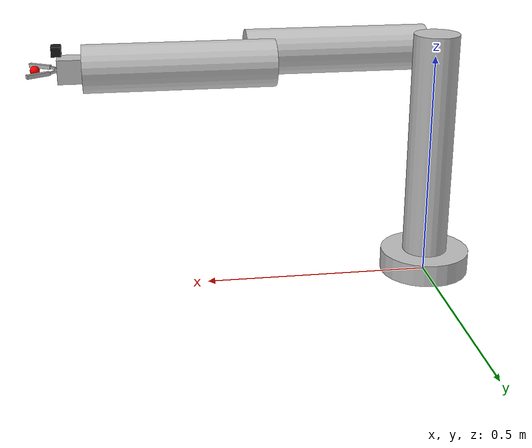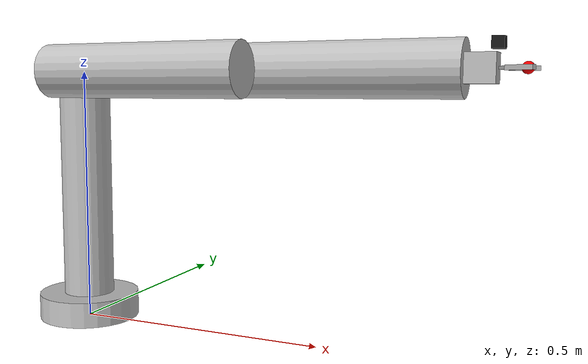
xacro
<?xml version="1.0"?>
<robot xmlns:xacro="http://www.ros.org/wiki/xacro" name="arm">
	<!-- Xacro arguments (injected from launch file) -->
	<xacro:arg name="controllers_yaml" default=""/>

	<!-- World link (fixed reference) -->
	<link name="world"/>

	<!-- Base Link -->
	<link name="base_link">
		<inertial>
			<mass value="1.0"/>
			<origin rpy="0 0 0" xyz="0 0 0.025"/>
			<inertia ixx="0.0027" iyy="0.0027" izz="0.005" ixy="0" ixz="0" iyz="0"/>
		</inertial>
		<visual>
			<geometry>
				<cylinder length="0.05" radius="0.1"/>
			</geometry>
			<material name="silver">
				<color rgba="0.75 0.75 0.75 1"/>
			</material>
			<origin rpy="0 0 0" xyz="0 0 0.025"/>
		</visual>
		<collision>
			<geometry>
				<cylinder length="0.05" radius="0.1"/>
			</geometry>
			<origin rpy="0 0 0" xyz="0 0 0.025"/>
		</collision>
	</link>

	<joint name="fixed" type="fixed">
		<parent link="world"/>
		<child link="base_link"/>
	</joint>

	<!-- Torso (rotates around Z axis) -->
	<link name="torso">
		<inertial>
			<mass value="1.0"/>
			<origin rpy="0 0 0" xyz="0 0 0.25"/>
			<inertia ixx="0.02146" iyy="0.02146" izz="0.00125" ixy="0" ixz="0" iyz="0"/>
		</inertial>
		<visual>
			<geometry>
				<cylinder length="0.5" radius="0.05"/>
			</geometry>
			<material name="silver">
				<color rgba="0.75 0.75 0.75 1"/>
			</material>
			<origin rpy="0 0 0" xyz="0.0 0.0 0.25"/>
		</visual>
		<collision>
			<geometry>
				<cylinder length="0.5" radius="0.05"/>
			</geometry>
			<origin rpy="0 0 0" xyz="0.0 0.0 0.25"/>
		</collision>
	</link>

	<joint name="hip" type="revolute">
		<axis xyz="0 0 1"/>
		<limit velocity="1.0" effort="30.0" lower="-3.14159" upper="3.14159"/>
		<parent link="base_link"/>
		<child link="torso"/>
		<origin rpy="0 0 0" xyz="0 0 0.05"/>
	</joint>

	<!-- Upper Arm -->
	<link name="upper_arm">
		<inertial>
			<mass value="1.0"/>
			<origin rpy="0 0 0" xyz="0 0 0.2"/>
			<inertia ixx="0.01396" iyy="0.01396" izz="0.00125" ixy="0" ixz="0" iyz="0"/>
		</inertial>
		<visual>
			<geometry>
				<cylinder length="0.4" radius="0.05"/>
			</geometry>
			<material name="silver"/>
			<origin rpy="0 0 0" xyz="0 0 0.2"/>
		</visual>
		<collision>
			<geometry>
				<cylinder length="0.4" radius="0.05"/>
			</geometry>
			<origin rpy="0 0 0" xyz="0 0 0.2"/>
		</collision>
	</link>

	<joint name="shoulder" type="revolute">
		<axis xyz="0 1 0"/>
		<limit velocity="1.0" effort="30.0" upper="0.6981" lower="-1.5708"/>
		<parent link="torso"/>
		<child link="upper_arm"/>
		<origin rpy="0 1.5708 0" xyz="0.0 -0.1 0.45"/>
	</joint>

	<!-- Lower Arm -->
	<link name="lower_arm">
		<inertial>
			<mass value="1.0"/>
			<origin rpy="0 0 0" xyz="0 0 0.2"/>
			<inertia ixx="0.01396" iyy="0.01396" izz="0.00125" ixy="0" ixz="0" iyz="0"/>
		</inertial>
		<visual>
			<geometry>
				<cylinder length="0.4" radius="0.05"/>
			</geometry>
			<material name="silver"/>
			<origin rpy="0 0 0" xyz="0 0 0.2"/>
		</visual>
		<collision>
			<geometry>
				<cylinder length="0.4" radius="0.05"/>
			</geometry>
			<origin rpy="0 0 0" xyz="0 0 0.2"/>
		</collision>
	</link>

	<joint name="elbow" type="revolute">
		<axis xyz="0 1 0"/>
		<limit velocity="1.0" effort="30.0" upper="2.1" lower="-2.1"/>
		<parent link="upper_arm"/>
		<child link="lower_arm"/>
		<origin rpy="0 0 0" xyz="0.0 0.1 0.35"/>
	</joint>

	<!-- Hand -->
	<link name="hand">
		<inertial>
			<mass value="1.0"/>
			<inertia ixx="0.00042" iyy="0.00042" izz="0.00042" ixy="0" ixz="0" iyz="0"/>
		</inertial>
		<visual>
			<geometry>
				<box size="0.05 0.05 0.05"/>
			</geometry>
			<material name="silver"/>
		</visual>
		<collision>
			<geometry>
				<box size="0.05 0.05 0.05"/>
			</geometry>
		</collision>
	</link>

	<joint name="wrist" type="revolute">
		<axis xyz="0 1 0"/>
		<limit velocity="1.0" effort="30.0" lower="-3.14159" upper="3.14159"/>
		<parent link="lower_arm"/>
		<child link="hand"/>
		<origin rpy="0 0 0" xyz="0.0 0.0 0.425"/>
	</joint>

	<!-- Left Gripper Base -->
	<link name="left_gripper_base">
		<inertial>
			<mass value="0.01"/>
			<!-- Box approx: 0.005 x 0.005 x 0.02 (see visual). Keep inertia physically consistent. -->
			<inertia ixx="3.54e-7" iyy="3.54e-7" izz="4.17e-8" ixy="0" ixz="0" iyz="0"/>
		</inertial>
		<visual>
			<geometry>
				<box size="0.005 0.005 0.02"/>
			</geometry>
			<material name="silver"/>
		</visual>
		<collision>
			<geometry>
				<box size="0.005 0.005 0.02"/>
			</geometry>
		</collision>
	</link>

	<joint name="l_g_base" type="revolute">
		<axis xyz="1 0 0"/>
		<limit velocity="1.0" effort="30.0" lower="0" upper="0.5236"/>
		<origin rpy="-0.9162 0 0" xyz="0 0.02 0.035"/>
		<parent link="hand"/>
		<child link="left_gripper_base"/>
	</joint>

	<!-- Right Gripper Base -->
	<link name="right_gripper_base">
		<inertial>
			<mass value="0.01"/>
			<!-- Box approx: 0.005 x 0.005 x 0.02 (see visual). Keep inertia physically consistent. -->
			<inertia ixx="3.54e-7" iyy="3.54e-7" izz="4.17e-8" ixy="0" ixz="0" iyz="0"/>
		</inertial>
		<visual>
			<geometry>
				<box size="0.005 0.005 0.02"/>
			</geometry>
			<material name="silver"/>
		</visual>
		<collision>
			<geometry>
				<box size="0.005 0.005 0.02"/>
			</geometry>
		</collision>
	</link>

	<joint name="r_g_base" type="revolute">
		<axis xyz="1 0 0"/>
		<limit velocity="1.0" effort="100.0" upper="0" lower="-0.5236"/>
		<origin rpy="0.9162 0 0" xyz="0 -0.02 0.035"/>
		<parent link="hand"/>
		<child link="right_gripper_base"/>
	</joint>

	<!-- Left Gripper Finger -->
	<link name="left_gripper_finger">
		<inertial>
			<mass value="0.01"/>
			<inertia ixx="1.57e-7" iyy="1.57e-7" izz="6.8e-7" ixy="0" ixz="0" iyz="0"/>
		</inertial>
		<visual>
			<geometry>
				<box size="0.008 0.008 0.05"/>
			</geometry>
			<material name="silver"/>
		</visual>
		<collision>
			<geometry>
				<box size="0.008 0.008 0.05"/>
			</geometry>
		</collision>
	</link>

	<joint name="l_g_finger" type="fixed">
		<origin rpy="0.3926 0 0" xyz="0 -0.01 0.03"/>
		<parent link="left_gripper_base"/>
		<child link="left_gripper_finger"/>
	</joint>

	<!-- Right Gripper Finger -->
	<link name="right_gripper_finger">
		<inertial>
			<mass value="0.01"/>
			<inertia ixx="1.57e-7" iyy="1.57e-7" izz="6.8e-7" ixy="0" ixz="0" iyz="0"/>
		</inertial>
		<visual>
			<geometry>
				<box size="0.008 0.008 0.05"/>
			</geometry>
			<material name="silver"/>
		</visual>
		<collision>
			<geometry>
				<box size="0.005 0.005 0.05"/>
			</geometry>
		</collision>
	</link>

	<joint name="r_g_finger" type="fixed">
		<origin rpy="-0.3926 0 0" xyz="0 0.01 0.03"/>
		<parent link="right_gripper_base"/>
		<child link="right_gripper_finger"/>
	</joint>

	<!-- TCP frames -->
	<joint name="tool0_joint" type="fixed">
		<origin xyz="0 0 0.025" rpy="0 0 0"/>
		<parent link="hand"/>
		<child link="tool0"/>
	</joint>
	<link name="tool0"/>

	<joint name="tcp_joint" type="fixed">
		<origin xyz="0 0 0.045" rpy="0 0 0"/>
		<parent link="tool0"/>
		<child link="tcp"/>
	</joint>
	<link name="tcp">
		<visual>
			<geometry>
				<sphere radius="0.01"/>
			</geometry>
			<material name="tcp_red">
				<color rgba="1 0 0 1"/>
			</material>
		</visual>
		<collision>
			<geometry>
				<sphere radius="0.01"/>
			</geometry>
		</collision>
	</link>

	<!-- TCP uses material from URDF visual (tcp_red) -->

	<!-- ==================== Wrist-Mounted Camera ==================== -->
	<!-- Camera link attached to tool0 - camera looks same direction as gripper -->
	<!-- Gazebo camera looks along +X of sensor link, so rotate to align with tool0 +Z -->
	<joint name="camera_joint" type="fixed">
		<parent link="tool0"/>
		<child link="camera_link"/>
		<!-- Position: Above gripper (-X), Rotation: -90° pitch so camera X aligns with tool0 Z -->
		<origin xyz="-0.04 0 0" rpy="0 -1.5708 0"/>
	</joint>
	<link name="camera_link">
		<visual>
			<geometry>
				<box size="0.02 0.03 0.02"/>
			</geometry>
			<material name="camera_black">
				<color rgba="0.1 0.1 0.1 1"/>
			</material>
		</visual>
		<collision>
			<geometry>
				<box size="0.02 0.03 0.02"/>
			</geometry>
		</collision>
		<inertial>
			<mass value="0.05"/>
			<inertia ixx="1e-6" iyy="1e-6" izz="1e-6" ixy="0" ixz="0" iyz="0"/>
		</inertial>
	</link>

	<!-- ROS optical frame convention: Z forward, X right, Y down -->
	<joint name="camera_optical_joint" type="fixed">
		<parent link="camera_link"/>
		<child link="camera_optical_frame"/>
		<origin xyz="0 0 0" rpy="-1.5708 0 -1.5708"/>
	</joint>
	<link name="camera_optical_frame"/>

	<!-- Gazebo Sim camera (RGB-D sensor - generic, ROS bridge handles communication) -->
	<gazebo reference="camera_link">
		<sensor type="rgbd_camera" name="wrist_rgbd_camera">
			<always_on>true</always_on>
			<update_rate>30.0</update_rate>
			<topic>camera</topic>
			<ignition_frame_id>camera_optical_frame</ignition_frame_id>
			<camera name="wrist_camera">
				<horizontal_fov>1.57</horizontal_fov>
				<image>
					<width>640</width>
					<height>480</height>
					<format>R8G8B8</format>
				</image>
				<!-- Explicit intrinsics to fix cx/cy - must be inside lens element -->
				<lens>
					<intrinsics>
						<fx>277</fx>
						<fy>277</fy>
						<cx>320</cx>
						<cy>240</cy>
						<s>0</s>
					</intrinsics>
				</lens>
				<clip>
					<near>0.05</near>
					<far>3.0</far>
				</clip>
				<depth_camera>
					<clip>
						<near>0.05</near>
						<far>3.0</far>
					</clip>
				</depth_camera>
				<noise>
					<type>gaussian</type>
					<mean>0.0</mean>
					<stddev>0.007</stddev>
				</noise>
			</camera>
		</sensor>
	</gazebo>

	<!-- ==================== ros2_control ==================== -->
	<ros2_control name="robot_arm_control" type="system">
		<hardware>
			<plugin>ign_ros2_control/IgnitionSystem</plugin>
		</hardware>
		<joint name="hip">
			<command_interface name="position">
				<param name="min">-3.14159</param>
				<param name="max">3.14159</param>
			</command_interface>
			<state_interface name="position"/>
			<state_interface name="velocity"/>
		</joint>
		<joint name="shoulder">
			<command_interface name="position">
				<param name="min">-1.5708</param>
				<param name="max">0.6981</param>
			</command_interface>
			<state_interface name="position"/>
			<state_interface name="velocity"/>
		</joint>
		<joint name="elbow">
			<command_interface name="position">
				<param name="min">-2.1</param>
				<param name="max">2.1</param>
			</command_interface>
			<state_interface name="position"/>
			<state_interface name="velocity"/>
		</joint>
		<joint name="wrist">
			<command_interface name="position">
				<param name="min">-3.14159</param>
				<param name="max">3.14159</param>
			</command_interface>
			<state_interface name="position"/>
			<state_interface name="velocity"/>
		</joint>
		<joint name="l_g_base">
			<command_interface name="position">
				<param name="min">0</param>
				<param name="max">0.5236</param>
			</command_interface>
			<state_interface name="position"/>
			<state_interface name="velocity"/>
		</joint>
		<joint name="r_g_base">
			<command_interface name="position">
				<param name="min">-0.5236</param>
				<param name="max">0</param>
			</command_interface>
			<state_interface name="position"/>
			<state_interface name="velocity"/>
		</joint>
	</ros2_control>

	<!-- ==================== Gazebo Sim ROS2 Control Plugin (Ignition Fortress) ==================== -->
	<gazebo>
		<plugin filename="ign_ros2_control-system" name="ign_ros2_control::IgnitionROS2ControlPlugin">
			<parameters>$(arg controllers_yaml)</parameters>
		</plugin>
	</gazebo>

	<!-- Note: Gazebo Sim uses materials from URDF visuals directly -->
	<!-- Old Gazebo/Grey references removed - not needed in Ignition -->

</robot>
